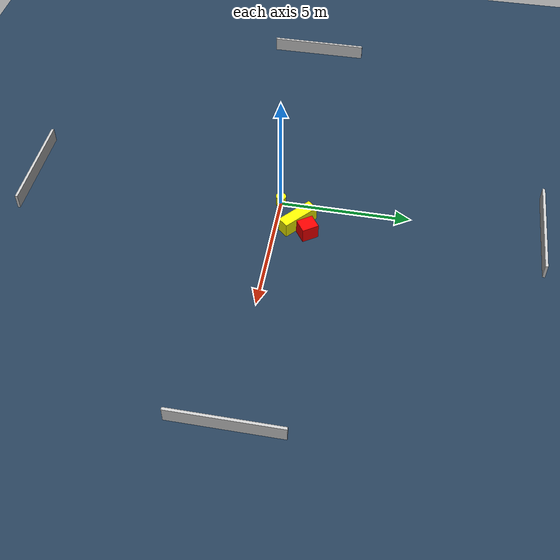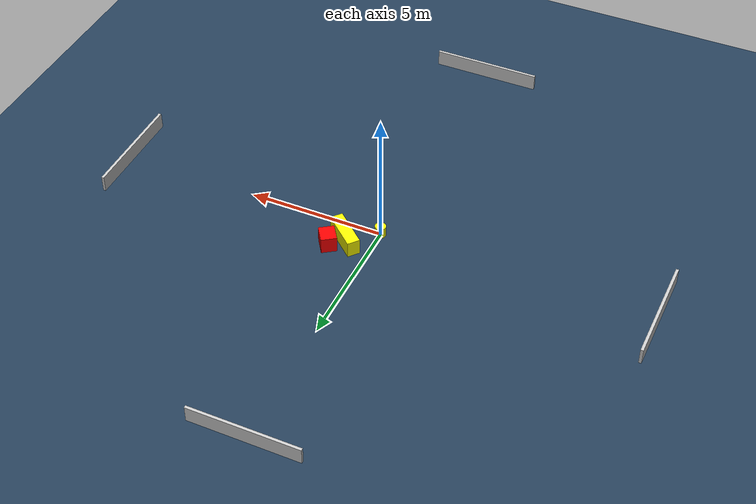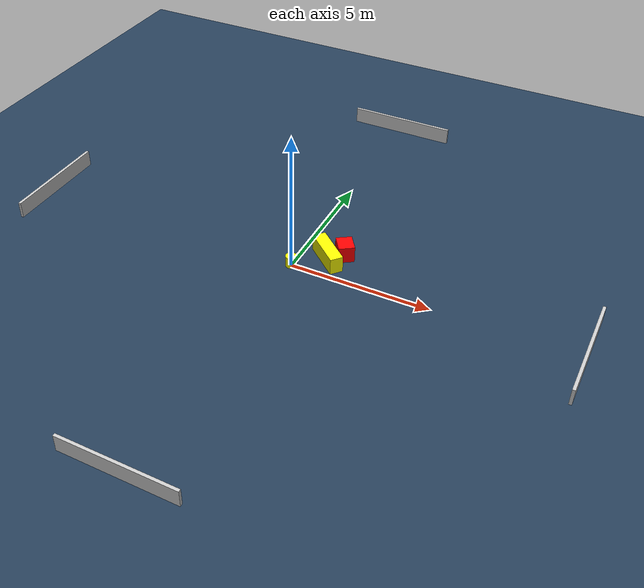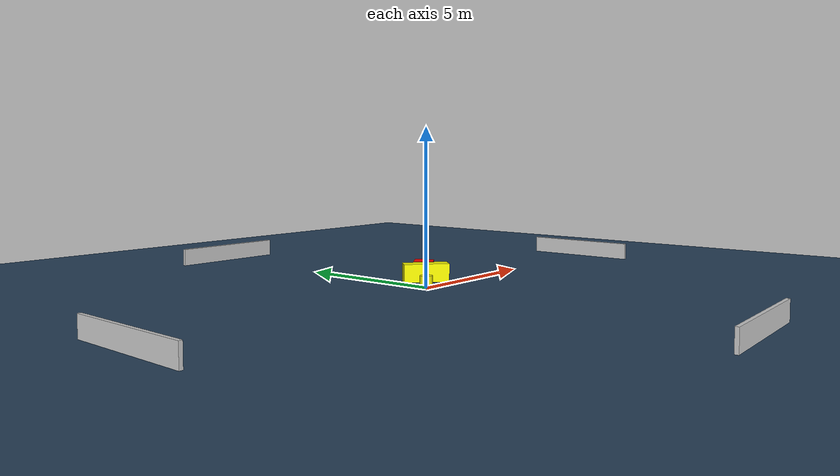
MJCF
<?xml version="1.0" ?>
<mujoco model="generated_environment">
  <option timestep="0.01" integrator="RK4" cone="elliptic"/>
  <default>
    <geom density="1"/>
  </default>
  <asset>
    <texture builtin="gradient" height="3072" name="skybox" rgb1="0.3 0.5 0.7" rgb2="0 0 0" type="skybox" width="512"/>
    <texture builtin="checker" height="300" name="groundplane" rgb1="0.2 0.3 0.4" rgb2="0.1 0.2 0.3" type="2d" width="300"/>
    <material name="groundplane" reflectance="0.2" texrepeat="5 5" texture="groundplane"/>
  </asset>
  <worldbody>
    <light dir="0 0 -1" directional="true" pos="0 0 1.5"/>
    <geom condim="3" friction="0.5 0.005 0.001" material="groundplane" name="floor" pos="0 0 0" size="0 0 0.05" type="plane"/>
    <body name="walls">
      <geom name="wall_1" condim="4" pos="-10.0 0.0 0.3" rgba="0.800000011920929 0.800000011920929 0.800000011920929 1.0" size="0.05 2.0 0.3" type="box"/>
      <geom name="wall_2" condim="4" pos="10.0 0.0 0.3" rgba="0.800000011920929 0.800000011920929 0.800000011920929 1.0" size="0.05 2.0 0.3" type="box"/>
      <geom name="wall_3" condim="4" pos="0.0 -10.0 0.3" rgba="0.800000011920929 0.800000011920929 0.800000011920929 1.0" size="2.0 0.05 0.3" type="box"/>
      <geom name="wall_4" condim="4" pos="0.0 10.0 0.3" rgba="0.800000011920929 0.800000011920929 0.800000011920929 1.0" size="2.0 0.05 0.3" type="box"/>
    </body>
    <body name="robot">
      <joint name="joint_x" type="slide" pos="0 0 0" axis="1 0 0"/>
      <joint name="joint_y" type="slide" pos="0 0 0" axis="0 1 0"/>
      <geom name="robot" type="cylinder" pos="0.0 0.0 0.2" size="0.2 0.2 0.0" mass="5.0" friction="1.0 0.005 0.0001" condim="4" rgba="1.0 1.0 0.0 1.0"/>
    </body>
    <body name="obstacle_1_movable">
      <geom name="obstacle_1_movable" condim="4" pos="0.9777910304660778 0.8171791744916563 0.3" euler="0 0 139.09579021889513" friction="0.0 0.005 0.001" rgba="1.0 1.0 0.0 1.0" size="0.7457460013800687 0.23149231944533788 0.3" type="box" mass="0.1"/>
      <joint type="free"/>
    </body>
    <body name="obstacle_2_static">
      <geom name="obstacle_2_static" condim="4" pos="1.4268852707263286 1.258592391017509 0.3" euler="0 0 34.38440560141733" friction="0.0 0.005 0.001" rgba="1.0 0.0 0.0 1.0" size="0.2816561854554058 0.3222968552232602 0.3" type="box"/>
    </body>
  </worldbody>
  <actuator>
    <motor name="actuator_x" joint="joint_x" gear="1" ctrlrange="-1 1"/>
    <motor name="actuator_y" joint="joint_y" gear="1" ctrlrange="-1 1"/>
  </actuator>
</mujoco>
